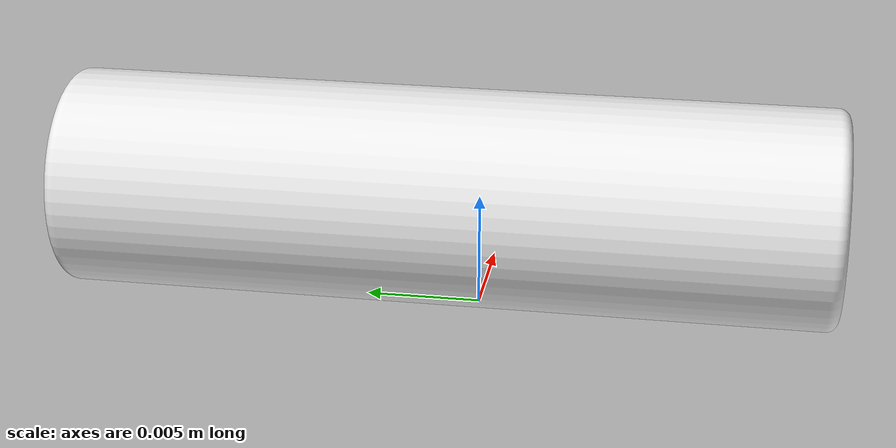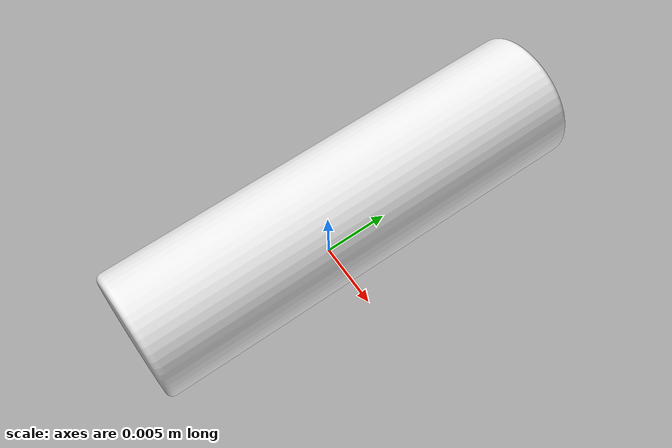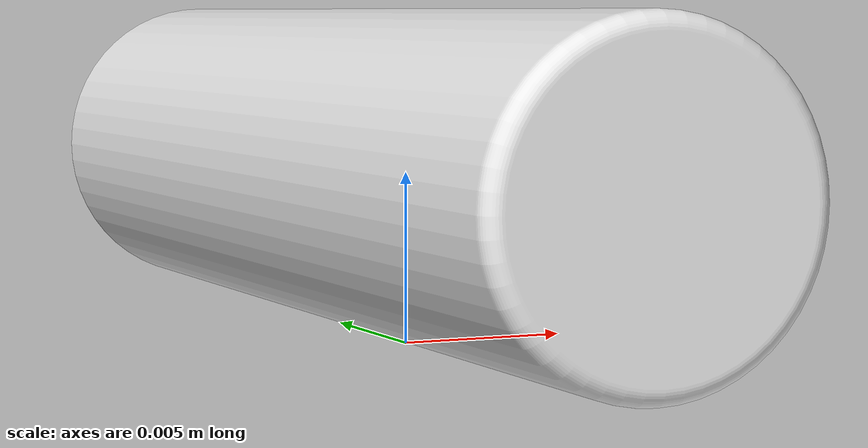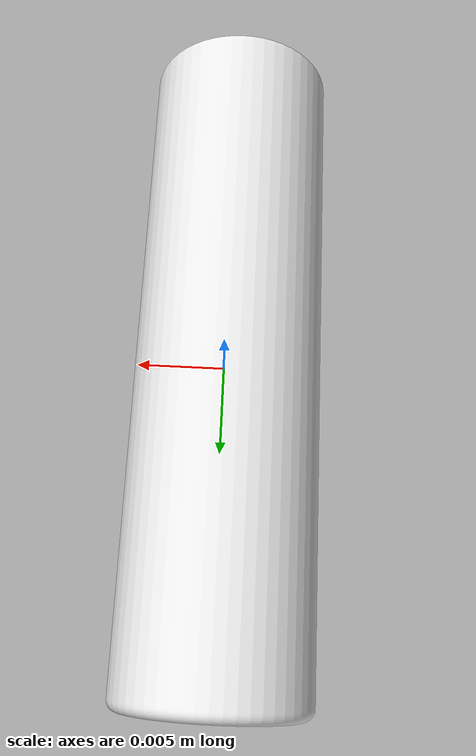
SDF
<?xml version="1.0" ?>
<sdf version="1.5">
  <model name="Part2">
    <static>true</static>
    <link name="part2_link">

      <collision name="collision">
        <geometry>
          <mesh>
            <uri>model://part2/meshes/part2.dae</uri>
            <scale>1.0 1.0 1.0</scale>
          </mesh>
        </geometry>
      </collision>

      <visual name="visual">
        <geometry>
          <mesh>
            <uri>model://part2/meshes/part2.dae</uri>
            <scale>1.0 1.0 1.0</scale>
          </mesh>
        </geometry>
        <material>
          <script>
            <uri>file://media/materials/scripts/gazebo.material</uri>
            <name>Gazebo/White</name>
          </script>
        </material>
      </visual>
    </link>
  </model>
</sdf>
